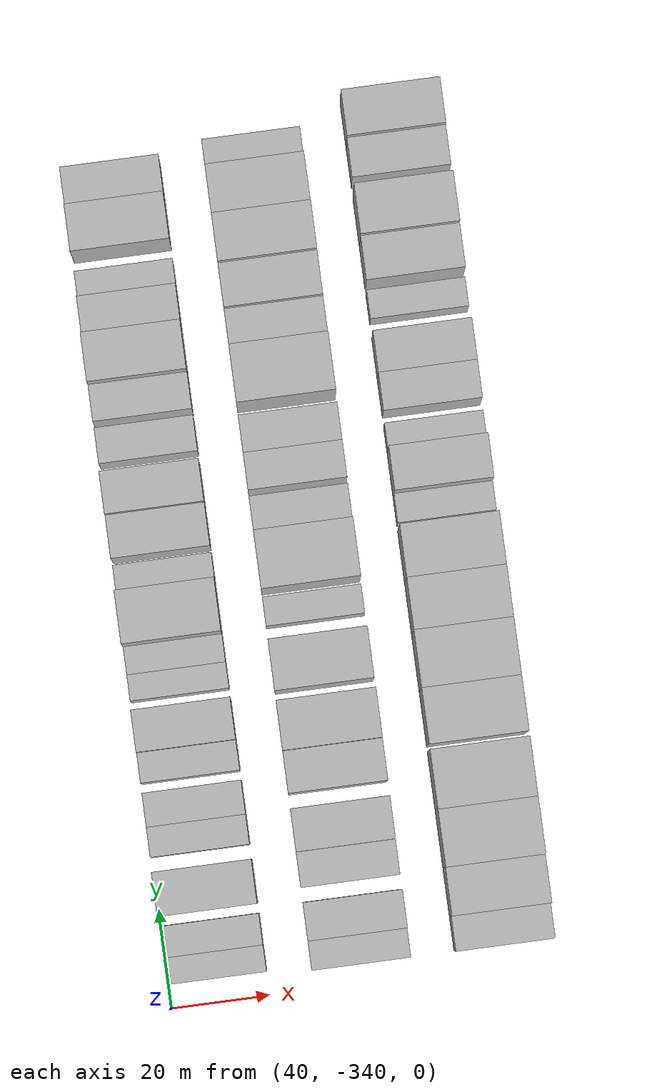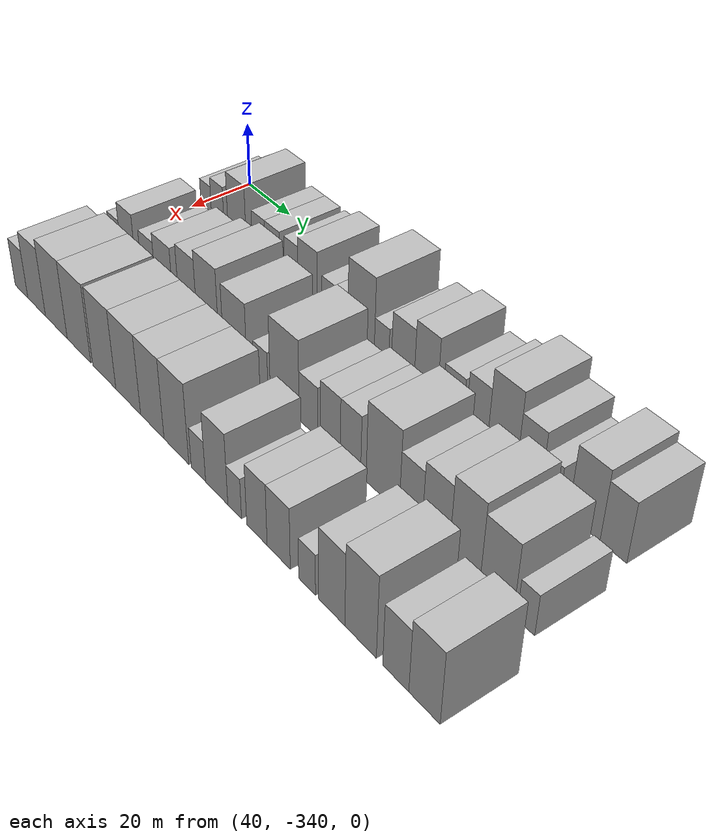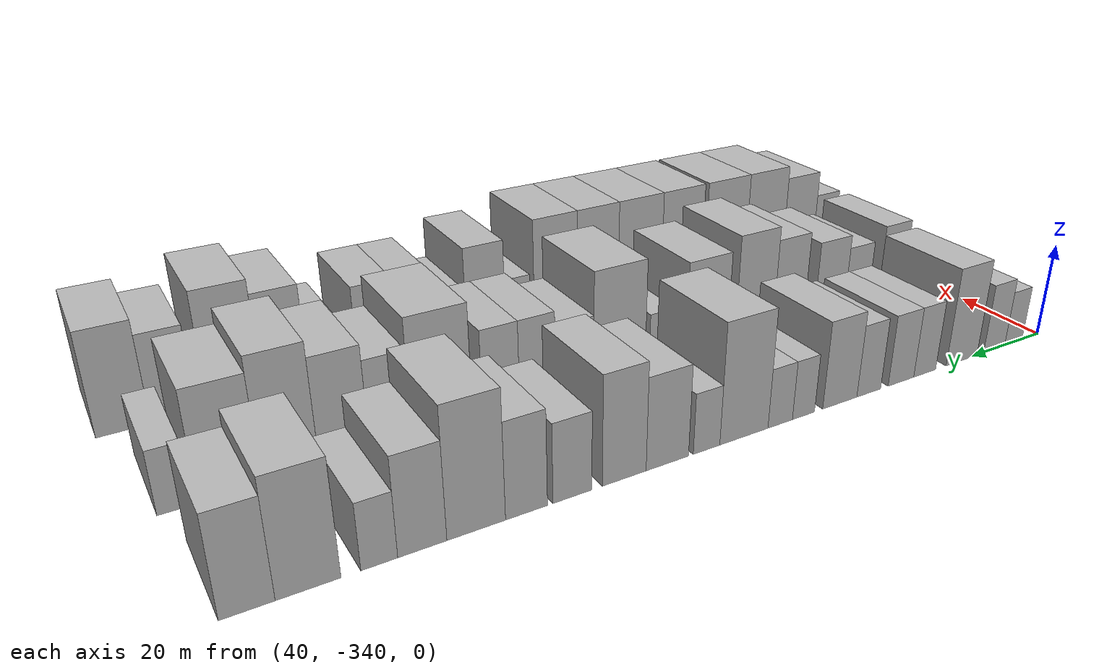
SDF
<sdf version="1.6">
 <world name="default">
  <model name="building_1">
   <static>1</static>
   <pose>50.0000 -332.3124 0 0.000000 0.000000 0.000000</pose>
   <link name="link">
    <pose>0 0 6.00 0 0 0</pose>
    <collision name="collision"><geometry><box><size>20.0000 5.3752 12.0000</size></box></geometry></collision>
    <visual name="visual">
     <cast_shadows>0</cast_shadows>
     <geometry><box><size>20.0000 5.3752 12.0000</size></box></geometry>
     <material>
      <script>
       <uri>model://HANNAS_wall/materials/scripts</uri>
       <uri>model://HANNAS_wall/materials/textures</uri>
       <name>vrc/HANNAS_wall</name>
      </script>
     </material>
    </visual>
   </link>
  </model>
  <model name="building_2">
   <static>1</static>
   <pose>50.0000 -326.4611 0 0.000000 0.000000 0.000000</pose>
   <link name="link">
    <pose>0 0 7.50 0 0 0</pose>
    <collision name="collision"><geometry><box><size>20.0000 6.3274 15.0000</size></box></geometry></collision>
    <visual name="visual">
     <cast_shadows>0</cast_shadows>
     <geometry><box><size>20.0000 6.3274 15.0000</size></box></geometry>
     <material>
      <script>
       <uri>model://HANNAS_wall/materials/scripts</uri>
       <uri>model://HANNAS_wall/materials/textures</uri>
       <name>vrc/HANNAS_wall</name>
      </script>
     </material>
    </visual>
   </link>
  </model>
  <model name="building_3">
   <static>1</static>
   <pose>50.0000 -316.8551 0 0.000000 0.000000 0.000000</pose>
   <link name="link">
    <pose>0 0 10.50 0 0 0</pose>
    <collision name="collision"><geometry><box><size>20.0000 8.8847 21.0000</size></box></geometry></collision>
    <visual name="visual">
     <cast_shadows>0</cast_shadows>
     <geometry><box><size>20.0000 8.8847 21.0000</size></box></geometry>
     <material>
      <script>
       <uri>model://HANNAS_wall/materials/scripts</uri>
       <uri>model://HANNAS_wall/materials/textures</uri>
       <name>vrc/HANNAS_wall</name>
      </script>
     </material>
    </visual>
   </link>
  </model>
  <model name="building_4">
   <static>1</static>
   <pose>50.0000 -306.3865 0 0.000000 0.000000 0.000000</pose>
   <link name="link">
    <pose>0 0 7.50 0 0 0</pose>
    <collision name="collision"><geometry><box><size>20.0000 6.0524 15.0000</size></box></geometry></collision>
    <visual name="visual">
     <cast_shadows>0</cast_shadows>
     <geometry><box><size>20.0000 6.0524 15.0000</size></box></geometry>
     <material>
      <script>
       <uri>model://HANNAS_wall/materials/scripts</uri>
       <uri>model://HANNAS_wall/materials/textures</uri>
       <name>vrc/HANNAS_wall</name>
      </script>
     </material>
    </visual>
   </link>
  </model>
  <model name="building_5">
   <static>1</static>
   <pose>50.0000 -299.9260 0 0.000000 0.000000 0.000000</pose>
   <link name="link">
    <pose>0 0 7.50 0 0 0</pose>
    <collision name="collision"><geometry><box><size>20.0000 6.8686 15.0000</size></box></geometry></collision>
    <visual name="visual">
     <cast_shadows>0</cast_shadows>
     <geometry><box><size>20.0000 6.8686 15.0000</size></box></geometry>
     <material>
      <script>
       <uri>model://HANNAS_wall/materials/scripts</uri>
       <uri>model://HANNAS_wall/materials/textures</uri>
       <name>vrc/HANNAS_wall</name>
      </script>
     </material>
    </visual>
   </link>
  </model>
  <model name="building_6">
   <static>1</static>
   <pose>50.0000 -291.4294 0 0.000000 0.000000 0.000000</pose>
   <link name="link">
    <pose>0 0 7.50 0 0 0</pose>
    <collision name="collision"><geometry><box><size>20.0000 6.1247 15.0000</size></box></geometry></collision>
    <visual name="visual">
     <cast_shadows>0</cast_shadows>
     <geometry><box><size>20.0000 6.1247 15.0000</size></box></geometry>
     <material>
      <script>
       <uri>model://HANNAS_wall/materials/scripts</uri>
       <uri>model://HANNAS_wall/materials/textures</uri>
       <name>vrc/HANNAS_wall</name>
      </script>
     </material>
    </visual>
   </link>
  </model>
  <model name="building_7">
   <static>1</static>
   <pose>50.0000 -284.0968 0 0.000000 0.000000 0.000000</pose>
   <link name="link">
    <pose>0 0 9.00 0 0 0</pose>
    <collision name="collision"><geometry><box><size>20.0000 8.5404 18.0000</size></box></geometry></collision>
    <visual name="visual">
     <cast_shadows>0</cast_shadows>
     <geometry><box><size>20.0000 8.5404 18.0000</size></box></geometry>
     <material>
      <script>
       <uri>model://HANNAS_wall/materials/scripts</uri>
       <uri>model://HANNAS_wall/materials/textures</uri>
       <name>vrc/HANNAS_wall</name>
      </script>
     </material>
    </visual>
   </link>
  </model>
  <model name="building_8">
   <static>1</static>
   <pose>50.0000 -275.1742 0 0.000000 0.000000 0.000000</pose>
   <link name="link">
    <pose>0 0 6.00 0 0 0</pose>
    <collision name="collision"><geometry><box><size>20.0000 5.3046 12.0000</size></box></geometry></collision>
    <visual name="visual">
     <cast_shadows>0</cast_shadows>
     <geometry><box><size>20.0000 5.3046 12.0000</size></box></geometry>
     <material>
      <script>
       <uri>model://HANNAS_wall/materials/scripts</uri>
       <uri>model://HANNAS_wall/materials/textures</uri>
       <name>vrc/HANNAS_wall</name>
      </script>
     </material>
    </visual>
   </link>
  </model>
  <model name="building_9">
   <static>1</static>
   <pose>50.0000 -269.6709 0 0.000000 0.000000 0.000000</pose>
   <link name="link">
    <pose>0 0 6.00 0 0 0</pose>
    <collision name="collision"><geometry><box><size>20.0000 5.7021 12.0000</size></box></geometry></collision>
    <visual name="visual">
     <cast_shadows>0</cast_shadows>
     <geometry><box><size>20.0000 5.7021 12.0000</size></box></geometry>
     <material>
      <script>
       <uri>model://HANNAS_wall/materials/scripts</uri>
       <uri>model://HANNAS_wall/materials/textures</uri>
       <name>vrc/HANNAS_wall</name>
      </script>
     </material>
    </visual>
   </link>
  </model>
  <model name="building_10">
   <static>1</static>
   <pose>50.0000 -261.4165 0 0.000000 0.000000 0.000000</pose>
   <link name="link">
    <pose>0 0 12.00 0 0 0</pose>
    <collision name="collision"><geometry><box><size>20.0000 10.8067 24.0000</size></box></geometry></collision>
    <visual name="visual">
     <cast_shadows>0</cast_shadows>
     <geometry><box><size>20.0000 10.8067 24.0000</size></box></geometry>
     <material>
      <script>
       <uri>model://HANNAS_wall/materials/scripts</uri>
       <uri>model://HANNAS_wall/materials/textures</uri>
       <name>vrc/HANNAS_wall</name>
      </script>
     </material>
    </visual>
   </link>
  </model>
  <model name="building_11">
   <static>1</static>
   <pose>50.0000 -253.1574 0 0.000000 0.000000 0.000000</pose>
   <link name="link">
    <pose>0 0 6.00 0 0 0</pose>
    <collision name="collision"><geometry><box><size>20.0000 5.7115 12.0000</size></box></geometry></collision>
    <visual name="visual">
     <cast_shadows>0</cast_shadows>
     <geometry><box><size>20.0000 5.7115 12.0000</size></box></geometry>
     <material>
      <script>
       <uri>model://HANNAS_wall/materials/scripts</uri>
       <uri>model://HANNAS_wall/materials/textures</uri>
       <name>vrc/HANNAS_wall</name>
      </script>
     </material>
    </visual>
   </link>
  </model>
  <model name="building_12">
   <static>1</static>
   <pose>50.0000 -244.9199 0 0.000000 0.000000 0.000000</pose>
   <link name="link">
    <pose>0 0 9.00 0 0 0</pose>
    <collision name="collision"><geometry><box><size>20.0000 8.7636 18.0000</size></box></geometry></collision>
    <visual name="visual">
     <cast_shadows>0</cast_shadows>
     <geometry><box><size>20.0000 8.7636 18.0000</size></box></geometry>
     <material>
      <script>
       <uri>model://HANNAS_wall/materials/scripts</uri>
       <uri>model://HANNAS_wall/materials/textures</uri>
       <name>vrc/HANNAS_wall</name>
      </script>
     </material>
    </visual>
   </link>
  </model>
  <model name="building_13">
   <static>1</static>
   <pose>50.0000 -236.2172 0 0.000000 0.000000 0.000000</pose>
   <link name="link">
    <pose>0 0 10.50 0 0 0</pose>
    <collision name="collision"><geometry><box><size>20.0000 8.6419 21.0000</size></box></geometry></collision>
    <visual name="visual">
     <cast_shadows>0</cast_shadows>
     <geometry><box><size>20.0000 8.6419 21.0000</size></box></geometry>
     <material>
      <script>
       <uri>model://HANNAS_wall/materials/scripts</uri>
       <uri>model://HANNAS_wall/materials/textures</uri>
       <name>vrc/HANNAS_wall</name>
      </script>
     </material>
    </visual>
   </link>
  </model>
  <model name="building_14">
   <static>1</static>
   <pose>50.0000 -226.2492 0 0.000000 0.000000 0.000000</pose>
   <link name="link">
    <pose>0 0 7.50 0 0 0</pose>
    <collision name="collision"><geometry><box><size>20.0000 7.2940 15.0000</size></box></geometry></collision>
    <visual name="visual">
     <cast_shadows>0</cast_shadows>
     <geometry><box><size>20.0000 7.2940 15.0000</size></box></geometry>
     <material>
      <script>
       <uri>model://HANNAS_wall/materials/scripts</uri>
       <uri>model://HANNAS_wall/materials/textures</uri>
       <name>vrc/HANNAS_wall</name>
      </script>
     </material>
    </visual>
   </link>
  </model>
  <model name="building_15">
   <static>1</static>
   <pose>50.0000 -217.8523 0 0.000000 0.000000 0.000000</pose>
   <link name="link">
    <pose>0 0 9.00 0 0 0</pose>
    <collision name="collision"><geometry><box><size>20.0000 7.4997 18.0000</size></box></geometry></collision>
    <visual name="visual">
     <cast_shadows>0</cast_shadows>
     <geometry><box><size>20.0000 7.4997 18.0000</size></box></geometry>
     <material>
      <script>
       <uri>model://HANNAS_wall/materials/scripts</uri>
       <uri>model://HANNAS_wall/materials/textures</uri>
       <name>vrc/HANNAS_wall</name>
      </script>
     </material>
    </visual>
   </link>
  </model>
  <model name="building_16">
   <static>1</static>
   <pose>50.0000 -209.1032 0 0.000000 0.000000 0.000000</pose>
   <link name="link">
    <pose>0 0 12.00 0 0 0</pose>
    <collision name="collision"><geometry><box><size>20.0000 9.9984 24.0000</size></box></geometry></collision>
    <visual name="visual">
     <cast_shadows>0</cast_shadows>
     <geometry><box><size>20.0000 9.9984 24.0000</size></box></geometry>
     <material>
      <script>
       <uri>model://HANNAS_wall/materials/scripts</uri>
       <uri>model://HANNAS_wall/materials/textures</uri>
       <name>vrc/HANNAS_wall</name>
      </script>
     </material>
    </visual>
   </link>
  </model>
  <model name="building_17">
   <static>1</static>
   <pose>50.0000 -200.1259 0 0.000000 0.000000 0.000000</pose>
   <link name="link">
    <pose>0 0 9.00 0 0 0</pose>
    <collision name="collision"><geometry><box><size>20.0000 7.9562 18.0000</size></box></geometry></collision>
    <visual name="visual">
     <cast_shadows>0</cast_shadows>
     <geometry><box><size>20.0000 7.9562 18.0000</size></box></geometry>
     <material>
      <script>
       <uri>model://HANNAS_wall/materials/scripts</uri>
       <uri>model://HANNAS_wall/materials/textures</uri>
       <name>vrc/HANNAS_wall</name>
      </script>
     </material>
    </visual>
   </link>
  </model>
  <model name="building_18">
   <static>1</static>
   <pose>50.0000 -193.2746 0 0.000000 0.000000 0.000000</pose>
   <link name="link">
    <pose>0 0 6.00 0 0 0</pose>
    <collision name="collision"><geometry><box><size>20.0000 5.7465 12.0000</size></box></geometry></collision>
    <visual name="visual">
     <cast_shadows>0</cast_shadows>
     <geometry><box><size>20.0000 5.7465 12.0000</size></box></geometry>
     <material>
      <script>
       <uri>model://HANNAS_wall/materials/scripts</uri>
       <uri>model://HANNAS_wall/materials/textures</uri>
       <name>vrc/HANNAS_wall</name>
      </script>
     </material>
    </visual>
   </link>
  </model>
  <model name="building_19">
   <static>1</static>
   <pose>50.0000 -182.5983 0 0.000000 0.000000 0.000000</pose>
   <link name="link">
    <pose>0 0 10.50 0 0 0</pose>
    <collision name="collision"><geometry><box><size>20.0000 9.6061 21.0000</size></box></geometry></collision>
    <visual name="visual">
     <cast_shadows>0</cast_shadows>
     <geometry><box><size>20.0000 9.6061 21.0000</size></box></geometry>
     <material>
      <script>
       <uri>model://HANNAS_wall/materials/scripts</uri>
       <uri>model://HANNAS_wall/materials/textures</uri>
       <name>vrc/HANNAS_wall</name>
      </script>
     </material>
    </visual>
   </link>
  </model>
  <model name="building_20">
   <static>1</static>
   <pose>50.0000 -173.8502 0 0.000000 0.000000 0.000000</pose>
   <link name="link">
    <pose>0 0 9.00 0 0 0</pose>
    <collision name="collision"><geometry><box><size>20.0000 7.8902 18.0000</size></box></geometry></collision>
    <visual name="visual">
     <cast_shadows>0</cast_shadows>
     <geometry><box><size>20.0000 7.8902 18.0000</size></box></geometry>
     <material>
      <script>
       <uri>model://HANNAS_wall/materials/scripts</uri>
       <uri>model://HANNAS_wall/materials/textures</uri>
       <name>vrc/HANNAS_wall</name>
      </script>
     </material>
    </visual>
   </link>
  </model>
  <model name="building_75">
   <static>1</static>
   <pose>79.0000 -333.0246 0 0.000000 0.000000 0.000000</pose>
   <link name="link">
    <pose>0 0 6.00 0 0 0</pose>
    <collision name="collision"><geometry><box><size>20.0000 5.9508 12.0000</size></box></geometry></collision>
    <visual name="visual">
     <cast_shadows>0</cast_shadows>
     <geometry><box><size>20.0000 5.9508 12.0000</size></box></geometry>
     <material>
      <script>
       <uri>model://HANNAS_wall/materials/scripts</uri>
       <uri>model://HANNAS_wall/materials/textures</uri>
       <name>vrc/HANNAS_wall</name>
      </script>
     </material>
    </visual>
   </link>
  </model>
  <model name="building_76">
   <static>1</static>
   <pose>79.0000 -326.1938 0 0.000000 0.000000 0.000000</pose>
   <link name="link">
    <pose>0 0 9.00 0 0 0</pose>
    <collision name="collision"><geometry><box><size>20.0000 7.7109 18.0000</size></box></geometry></collision>
    <visual name="visual">
     <cast_shadows>0</cast_shadows>
     <geometry><box><size>20.0000 7.7109 18.0000</size></box></geometry>
     <material>
      <script>
       <uri>model://HANNAS_wall/materials/scripts</uri>
       <uri>model://HANNAS_wall/materials/textures</uri>
       <name>vrc/HANNAS_wall</name>
      </script>
     </material>
    </visual>
   </link>
  </model>
  <model name="building_77">
   <static>1</static>
   <pose>79.0000 -315.7616 0 0.000000 0.000000 0.000000</pose>
   <link name="link">
    <pose>0 0 7.50 0 0 0</pose>
    <collision name="collision"><geometry><box><size>20.0000 7.1535 15.0000</size></box></geometry></collision>
    <visual name="visual">
     <cast_shadows>0</cast_shadows>
     <geometry><box><size>20.0000 7.1535 15.0000</size></box></geometry>
     <material>
      <script>
       <uri>model://HANNAS_wall/materials/scripts</uri>
       <uri>model://HANNAS_wall/materials/textures</uri>
       <name>vrc/HANNAS_wall</name>
      </script>
     </material>
    </visual>
   </link>
  </model>
  <model name="building_78">
   <static>1</static>
   <pose>79.0000 -307.8486 0 0.000000 0.000000 0.000000</pose>
   <link name="link">
    <pose>0 0 9.00 0 0 0</pose>
    <collision name="collision"><geometry><box><size>20.0000 8.6723 18.0000</size></box></geometry></collision>
    <visual name="visual">
     <cast_shadows>0</cast_shadows>
     <geometry><box><size>20.0000 8.6723 18.0000</size></box></geometry>
     <material>
      <script>
       <uri>model://HANNAS_wall/materials/scripts</uri>
       <uri>model://HANNAS_wall/materials/textures</uri>
       <name>vrc/HANNAS_wall</name>
      </script>
     </material>
    </visual>
   </link>
  </model>
  <model name="building_79">
   <static>1</static>
   <pose>79.0000 -296.2455 0 0.000000 0.000000 0.000000</pose>
   <link name="link">
    <pose>0 0 10.50 0 0 0</pose>
    <collision name="collision"><geometry><box><size>20.0000 8.5339 21.0000</size></box></geometry></collision>
    <visual name="visual">
     <cast_shadows>0</cast_shadows>
     <geometry><box><size>20.0000 8.5339 21.0000</size></box></geometry>
     <material>
      <script>
       <uri>model://HANNAS_wall/materials/scripts</uri>
       <uri>model://HANNAS_wall/materials/textures</uri>
       <name>vrc/HANNAS_wall</name>
      </script>
     </material>
    </visual>
   </link>
  </model>
  <model name="building_80">
   <static>1</static>
   <pose>79.0000 -286.9466 0 0.000000 0.000000 0.000000</pose>
   <link name="link">
    <pose>0 0 12.00 0 0 0</pose>
    <collision name="collision"><geometry><box><size>20.0000 10.0640 24.0000</size></box></geometry></collision>
    <visual name="visual">
     <cast_shadows>0</cast_shadows>
     <geometry><box><size>20.0000 10.0640 24.0000</size></box></geometry>
     <material>
      <script>
       <uri>model://HANNAS_wall/materials/scripts</uri>
       <uri>model://HANNAS_wall/materials/textures</uri>
       <name>vrc/HANNAS_wall</name>
      </script>
     </material>
    </visual>
   </link>
  </model>
  <model name="building_81">
   <static>1</static>
   <pose>79.0000 -274.7111 0 0.000000 0.000000 0.000000</pose>
   <link name="link">
    <pose>0 0 10.50 0 0 0</pose>
    <collision name="collision"><geometry><box><size>20.0000 10.4068 21.0000</size></box></geometry></collision>
    <visual name="visual">
     <cast_shadows>0</cast_shadows>
     <geometry><box><size>20.0000 10.4068 21.0000</size></box></geometry>
     <material>
      <script>
       <uri>model://HANNAS_wall/materials/scripts</uri>
       <uri>model://HANNAS_wall/materials/textures</uri>
       <name>vrc/HANNAS_wall</name>
      </script>
     </material>
    </visual>
   </link>
  </model>
  <model name="building_82">
   <static>1</static>
   <pose>79.0000 -263.5470 0 0.000000 0.000000 0.000000</pose>
   <link name="link">
    <pose>0 0 6.00 0 0 0</pose>
    <collision name="collision"><geometry><box><size>20.0000 5.9213 12.0000</size></box></geometry></collision>
    <visual name="visual">
     <cast_shadows>0</cast_shadows>
     <geometry><box><size>20.0000 5.9213 12.0000</size></box></geometry>
     <material>
      <script>
       <uri>model://HANNAS_wall/materials/scripts</uri>
       <uri>model://HANNAS_wall/materials/textures</uri>
       <name>vrc/HANNAS_wall</name>
      </script>
     </material>
    </visual>
   </link>
  </model>
  <model name="building_83">
   <static>1</static>
   <pose>79.0000 -253.6723 0 0.000000 0.000000 0.000000</pose>
   <link name="link">
    <pose>0 0 12.00 0 0 0</pose>
    <collision name="collision"><geometry><box><size>20.0000 11.8282 24.0000</size></box></geometry></collision>
    <visual name="visual">
     <cast_shadows>0</cast_shadows>
     <geometry><box><size>20.0000 11.8282 24.0000</size></box></geometry>
     <material>
      <script>
       <uri>model://HANNAS_wall/materials/scripts</uri>
       <uri>model://HANNAS_wall/materials/textures</uri>
       <name>vrc/HANNAS_wall</name>
      </script>
     </material>
    </visual>
   </link>
  </model>
  <model name="building_84">
   <static>1</static>
   <pose>79.0000 -244.0399 0 0.000000 0.000000 0.000000</pose>
   <link name="link">
    <pose>0 0 7.50 0 0 0</pose>
    <collision name="collision"><geometry><box><size>20.0000 7.4366 15.0000</size></box></geometry></collision>
    <visual name="visual">
     <cast_shadows>0</cast_shadows>
     <geometry><box><size>20.0000 7.4366 15.0000</size></box></geometry>
     <material>
      <script>
       <uri>model://HANNAS_wall/materials/scripts</uri>
       <uri>model://HANNAS_wall/materials/textures</uri>
       <name>vrc/HANNAS_wall</name>
      </script>
     </material>
    </visual>
   </link>
  </model>
  <model name="building_85">
   <static>1</static>
   <pose>79.0000 -235.5253 0 0.000000 0.000000 0.000000</pose>
   <link name="link">
    <pose>0 0 9.00 0 0 0</pose>
    <collision name="collision"><geometry><box><size>20.0000 7.5925 18.0000</size></box></geometry></collision>
    <visual name="visual">
     <cast_shadows>0</cast_shadows>
     <geometry><box><size>20.0000 7.5925 18.0000</size></box></geometry>
     <material>
      <script>
       <uri>model://HANNAS_wall/materials/scripts</uri>
       <uri>model://HANNAS_wall/materials/textures</uri>
       <name>vrc/HANNAS_wall</name>
      </script>
     </material>
    </visual>
   </link>
  </model>
  <model name="building_86">
   <static>1</static>
   <pose>79.0000 -227.9254 0 0.000000 0.000000 0.000000</pose>
   <link name="link">
    <pose>0 0 9.00 0 0 0</pose>
    <collision name="collision"><geometry><box><size>20.0000 7.6072 18.0000</size></box></geometry></collision>
    <visual name="visual">
     <cast_shadows>0</cast_shadows>
     <geometry><box><size>20.0000 7.6072 18.0000</size></box></geometry>
     <material>
      <script>
       <uri>model://HANNAS_wall/materials/scripts</uri>
       <uri>model://HANNAS_wall/materials/textures</uri>
       <name>vrc/HANNAS_wall</name>
      </script>
     </material>
    </visual>
   </link>
  </model>
  <model name="building_87">
   <static>1</static>
   <pose>79.0000 -216.2284 0 0.000000 0.000000 0.000000</pose>
   <link name="link">
    <pose>0 0 12.00 0 0 0</pose>
    <collision name="collision"><geometry><box><size>20.0000 11.7868 24.0000</size></box></geometry></collision>
    <visual name="visual">
     <cast_shadows>0</cast_shadows>
     <geometry><box><size>20.0000 11.7868 24.0000</size></box></geometry>
     <material>
      <script>
       <uri>model://HANNAS_wall/materials/scripts</uri>
       <uri>model://HANNAS_wall/materials/textures</uri>
       <name>vrc/HANNAS_wall</name>
      </script>
     </material>
    </visual>
   </link>
  </model>
  <model name="building_88">
   <static>1</static>
   <pose>79.0000 -206.4520 0 0.000000 0.000000 0.000000</pose>
   <link name="link">
    <pose>0 0 9.00 0 0 0</pose>
    <collision name="collision"><geometry><box><size>20.0000 7.7661 18.0000</size></box></geometry></collision>
    <visual name="visual">
     <cast_shadows>0</cast_shadows>
     <geometry><box><size>20.0000 7.7661 18.0000</size></box></geometry>
     <material>
      <script>
       <uri>model://HANNAS_wall/materials/scripts</uri>
       <uri>model://HANNAS_wall/materials/textures</uri>
       <name>vrc/HANNAS_wall</name>
      </script>
     </material>
    </visual>
   </link>
  </model>
  <model name="building_89">
   <static>1</static>
   <pose>79.0000 -198.0844 0 0.000000 0.000000 0.000000</pose>
   <link name="link">
    <pose>0 0 10.50 0 0 0</pose>
    <collision name="collision"><geometry><box><size>20.0000 8.9691 21.0000</size></box></geometry></collision>
    <visual name="visual">
     <cast_shadows>0</cast_shadows>
     <geometry><box><size>20.0000 8.9691 21.0000</size></box></geometry>
     <material>
      <script>
       <uri>model://HANNAS_wall/materials/scripts</uri>
       <uri>model://HANNAS_wall/materials/textures</uri>
       <name>vrc/HANNAS_wall</name>
      </script>
     </material>
    </visual>
   </link>
  </model>
  <model name="building_90">
   <static>1</static>
   <pose>79.0000 -188.7000 0 0.000000 0.000000 0.000000</pose>
   <link name="link">
    <pose>0 0 12.00 0 0 0</pose>
    <collision name="collision"><geometry><box><size>20.0000 9.7997 24.0000</size></box></geometry></collision>
    <visual name="visual">
     <cast_shadows>0</cast_shadows>
     <geometry><box><size>20.0000 9.7997 24.0000</size></box></geometry>
     <material>
      <script>
       <uri>model://HANNAS_wall/materials/scripts</uri>
       <uri>model://HANNAS_wall/materials/textures</uri>
       <name>vrc/HANNAS_wall</name>
      </script>
     </material>
    </visual>
   </link>
  </model>
  <model name="building_91">
   <static>1</static>
   <pose>79.0000 -178.6765 0 0.000000 0.000000 0.000000</pose>
   <link name="link">
    <pose>0 0 10.50 0 0 0</pose>
    <collision name="collision"><geometry><box><size>20.0000 10.2473 21.0000</size></box></geometry></collision>
    <visual name="visual">
     <cast_shadows>0</cast_shadows>
     <geometry><box><size>20.0000 10.2473 21.0000</size></box></geometry>
     <material>
      <script>
       <uri>model://HANNAS_wall/materials/scripts</uri>
       <uri>model://HANNAS_wall/materials/textures</uri>
       <name>vrc/HANNAS_wall</name>
      </script>
     </material>
    </visual>
   </link>
  </model>
  <model name="building_92">
   <static>1</static>
   <pose>79.0000 -169.8927 0 0.000000 0.000000 0.000000</pose>
   <link name="link">
    <pose>0 0 6.00 0 0 0</pose>
    <collision name="collision"><geometry><box><size>20.0000 5.3204 12.0000</size></box></geometry></collision>
    <visual name="visual">
     <cast_shadows>0</cast_shadows>
     <geometry><box><size>20.0000 5.3204 12.0000</size></box></geometry>
     <material>
      <script>
       <uri>model://HANNAS_wall/materials/scripts</uri>
       <uri>model://HANNAS_wall/materials/textures</uri>
       <name>vrc/HANNAS_wall</name>
      </script>
     </material>
    </visual>
   </link>
  </model>
  <model name="building_148">
   <static>1</static>
   <pose>108.0000 -332.4351 0 0.000000 0.000000 0.000000</pose>
   <link name="link">
    <pose>0 0 7.50 0 0 0</pose>
    <collision name="collision"><geometry><box><size>20.0000 7.1298 15.0000</size></box></geometry></collision>
    <visual name="visual">
     <cast_shadows>0</cast_shadows>
     <geometry><box><size>20.0000 7.1298 15.0000</size></box></geometry>
     <material>
      <script>
       <uri>model://HANNAS_wall/materials/scripts</uri>
       <uri>model://HANNAS_wall/materials/textures</uri>
       <name>vrc/HANNAS_wall</name>
      </script>
     </material>
    </visual>
   </link>
  </model>
  <model name="building_149">
   <static>1</static>
   <pose>108.0000 -324.0013 0 0.000000 0.000000 0.000000</pose>
   <link name="link">
    <pose>0 0 10.50 0 0 0</pose>
    <collision name="collision"><geometry><box><size>20.0000 9.7379 21.0000</size></box></geometry></collision>
    <visual name="visual">
     <cast_shadows>0</cast_shadows>
     <geometry><box><size>20.0000 9.7379 21.0000</size></box></geometry>
     <material>
      <script>
       <uri>model://HANNAS_wall/materials/scripts</uri>
       <uri>model://HANNAS_wall/materials/textures</uri>
       <name>vrc/HANNAS_wall</name>
      </script>
     </material>
    </visual>
   </link>
  </model>
  <model name="building_150">
   <static>1</static>
   <pose>108.0000 -313.3439 0 0.000000 0.000000 0.000000</pose>
   <link name="link">
    <pose>0 0 12.00 0 0 0</pose>
    <collision name="collision"><geometry><box><size>20.0000 11.5768 24.0000</size></box></geometry></collision>
    <visual name="visual">
     <cast_shadows>0</cast_shadows>
     <geometry><box><size>20.0000 11.5768 24.0000</size></box></geometry>
     <material>
      <script>
       <uri>model://HANNAS_wall/materials/scripts</uri>
       <uri>model://HANNAS_wall/materials/textures</uri>
       <name>vrc/HANNAS_wall</name>
      </script>
     </material>
    </visual>
   </link>
  </model>
  <model name="building_151">
   <static>1</static>
   <pose>108.0000 -301.5636 0 0.000000 0.000000 0.000000</pose>
   <link name="link">
    <pose>0 0 12.00 0 0 0</pose>
    <collision name="collision"><geometry><box><size>20.0000 11.9838 24.0000</size></box></geometry></collision>
    <visual name="visual">
     <cast_shadows>0</cast_shadows>
     <geometry><box><size>20.0000 11.9838 24.0000</size></box></geometry>
     <material>
      <script>
       <uri>model://HANNAS_wall/materials/scripts</uri>
       <uri>model://HANNAS_wall/materials/textures</uri>
       <name>vrc/HANNAS_wall</name>
      </script>
     </material>
    </visual>
   </link>
  </model>
  <model name="building_152">
   <static>1</static>
   <pose>108.0000 -288.9253 0 0.000000 0.000000 0.000000</pose>
   <link name="link">
    <pose>0 0 12.00 0 0 0</pose>
    <collision name="collision"><geometry><box><size>20.0000 11.2927 24.0000</size></box></geometry></collision>
    <visual name="visual">
     <cast_shadows>0</cast_shadows>
     <geometry><box><size>20.0000 11.2927 24.0000</size></box></geometry>
     <material>
      <script>
       <uri>model://HANNAS_wall/materials/scripts</uri>
       <uri>model://HANNAS_wall/materials/textures</uri>
       <name>vrc/HANNAS_wall</name>
      </script>
     </material>
    </visual>
   </link>
  </model>
  <model name="building_153">
   <static>1</static>
   <pose>108.0000 -277.4660 0 0.000000 0.000000 0.000000</pose>
   <link name="link">
    <pose>0 0 12.00 0 0 0</pose>
    <collision name="collision"><geometry><box><size>20.0000 11.6260 24.0000</size></box></geometry></collision>
    <visual name="visual">
     <cast_shadows>0</cast_shadows>
     <geometry><box><size>20.0000 11.6260 24.0000</size></box></geometry>
     <material>
      <script>
       <uri>model://HANNAS_wall/materials/scripts</uri>
       <uri>model://HANNAS_wall/materials/textures</uri>
       <name>vrc/HANNAS_wall</name>
      </script>
     </material>
    </visual>
   </link>
  </model>
  <model name="building_154">
   <static>1</static>
   <pose>108.0000 -266.3952 0 0.000000 0.000000 0.000000</pose>
   <link name="link">
    <pose>0 0 12.00 0 0 0</pose>
    <collision name="collision"><geometry><box><size>20.0000 10.5155 24.0000</size></box></geometry></collision>
    <visual name="visual">
     <cast_shadows>0</cast_shadows>
     <geometry><box><size>20.0000 10.5155 24.0000</size></box></geometry>
     <material>
      <script>
       <uri>model://HANNAS_wall/materials/scripts</uri>
       <uri>model://HANNAS_wall/materials/textures</uri>
       <name>vrc/HANNAS_wall</name>
      </script>
     </material>
    </visual>
   </link>
  </model>
  <model name="building_155">
   <static>1</static>
   <pose>108.0000 -255.7702 0 0.000000 0.000000 0.000000</pose>
   <link name="link">
    <pose>0 0 12.00 0 0 0</pose>
    <collision name="collision"><geometry><box><size>20.0000 10.7346 24.0000</size></box></geometry></collision>
    <visual name="visual">
     <cast_shadows>0</cast_shadows>
     <geometry><box><size>20.0000 10.7346 24.0000</size></box></geometry>
     <material>
      <script>
       <uri>model://HANNAS_wall/materials/scripts</uri>
       <uri>model://HANNAS_wall/materials/textures</uri>
       <name>vrc/HANNAS_wall</name>
      </script>
     </material>
    </visual>
   </link>
  </model>
  <model name="building_156">
   <static>1</static>
   <pose>108.0000 -246.4190 0 0.000000 0.000000 0.000000</pose>
   <link name="link">
    <pose>0 0 6.00 0 0 0</pose>
    <collision name="collision"><geometry><box><size>20.0000 5.9678 12.0000</size></box></geometry></collision>
    <visual name="visual">
     <cast_shadows>0</cast_shadows>
     <geometry><box><size>20.0000 5.9678 12.0000</size></box></geometry>
     <material>
      <script>
       <uri>model://HANNAS_wall/materials/scripts</uri>
       <uri>model://HANNAS_wall/materials/textures</uri>
       <name>vrc/HANNAS_wall</name>
      </script>
     </material>
    </visual>
   </link>
  </model>
  <model name="building_157">
   <static>1</static>
   <pose>108.0000 -238.9402 0 0.000000 0.000000 0.000000</pose>
   <link name="link">
    <pose>0 0 10.50 0 0 0</pose>
    <collision name="collision"><geometry><box><size>20.0000 8.9896 21.0000</size></box></geometry></collision>
    <visual name="visual">
     <cast_shadows>0</cast_shadows>
     <geometry><box><size>20.0000 8.9896 21.0000</size></box></geometry>
     <material>
      <script>
       <uri>model://HANNAS_wall/materials/scripts</uri>
       <uri>model://HANNAS_wall/materials/textures</uri>
       <name>vrc/HANNAS_wall</name>
      </script>
     </material>
    </visual>
   </link>
  </model>
  <model name="building_158">
   <static>1</static>
   <pose>108.0000 -231.7589 0 0.000000 0.000000 0.000000</pose>
   <link name="link">
    <pose>0 0 6.00 0 0 0</pose>
    <collision name="collision"><geometry><box><size>20.0000 5.3732 12.0000</size></box></geometry></collision>
    <visual name="visual">
     <cast_shadows>0</cast_shadows>
     <geometry><box><size>20.0000 5.3732 12.0000</size></box></geometry>
     <material>
      <script>
       <uri>model://HANNAS_wall/materials/scripts</uri>
       <uri>model://HANNAS_wall/materials/textures</uri>
       <name>vrc/HANNAS_wall</name>
      </script>
     </material>
    </visual>
   </link>
  </model>
  <model name="building_159">
   <static>1</static>
   <pose>108.0000 -223.2022 0 0.000000 0.000000 0.000000</pose>
   <link name="link">
    <pose>0 0 9.00 0 0 0</pose>
    <collision name="collision"><geometry><box><size>20.0000 7.7402 18.0000</size></box></geometry></collision>
    <visual name="visual">
     <cast_shadows>0</cast_shadows>
     <geometry><box><size>20.0000 7.7402 18.0000</size></box></geometry>
     <material>
      <script>
       <uri>model://HANNAS_wall/materials/scripts</uri>
       <uri>model://HANNAS_wall/materials/textures</uri>
       <name>vrc/HANNAS_wall</name>
      </script>
     </material>
    </visual>
   </link>
  </model>
  <model name="building_160">
   <static>1</static>
   <pose>108.0000 -215.0820 0 0.000000 0.000000 0.000000</pose>
   <link name="link">
    <pose>0 0 9.00 0 0 0</pose>
    <collision name="collision"><geometry><box><size>20.0000 8.5001 18.0000</size></box></geometry></collision>
    <visual name="visual">
     <cast_shadows>0</cast_shadows>
     <geometry><box><size>20.0000 8.5001 18.0000</size></box></geometry>
     <material>
      <script>
       <uri>model://HANNAS_wall/materials/scripts</uri>
       <uri>model://HANNAS_wall/materials/textures</uri>
       <name>vrc/HANNAS_wall</name>
      </script>
     </material>
    </visual>
   </link>
  </model>
  <model name="building_161">
   <static>1</static>
   <pose>108.0000 -204.8733 0 0.000000 0.000000 0.000000</pose>
   <link name="link">
    <pose>0 0 6.00 0 0 0</pose>
    <collision name="collision"><geometry><box><size>20.0000 5.9173 12.0000</size></box></geometry></collision>
    <visual name="visual">
     <cast_shadows>0</cast_shadows>
     <geometry><box><size>20.0000 5.9173 12.0000</size></box></geometry>
     <material>
      <script>
       <uri>model://HANNAS_wall/materials/scripts</uri>
       <uri>model://HANNAS_wall/materials/textures</uri>
       <name>vrc/HANNAS_wall</name>
      </script>
     </material>
    </visual>
   </link>
  </model>
  <model name="building_162">
   <static>1</static>
   <pose>108.0000 -196.4270 0 0.000000 0.000000 0.000000</pose>
   <link name="link">
    <pose>0 0 10.50 0 0 0</pose>
    <collision name="collision"><geometry><box><size>20.0000 8.9754 21.0000</size></box></geometry></collision>
    <visual name="visual">
     <cast_shadows>0</cast_shadows>
     <geometry><box><size>20.0000 8.9754 21.0000</size></box></geometry>
     <material>
      <script>
       <uri>model://HANNAS_wall/materials/scripts</uri>
       <uri>model://HANNAS_wall/materials/textures</uri>
       <name>vrc/HANNAS_wall</name>
      </script>
     </material>
    </visual>
   </link>
  </model>
  <model name="building_163">
   <static>1</static>
   <pose>108.0000 -186.8128 0 0.000000 0.000000 0.000000</pose>
   <link name="link">
    <pose>0 0 12.00 0 0 0</pose>
    <collision name="collision"><geometry><box><size>20.0000 10.2529 24.0000</size></box></geometry></collision>
    <visual name="visual">
     <cast_shadows>0</cast_shadows>
     <geometry><box><size>20.0000 10.2529 24.0000</size></box></geometry>
     <material>
      <script>
       <uri>model://HANNAS_wall/materials/scripts</uri>
       <uri>model://HANNAS_wall/materials/textures</uri>
       <name>vrc/HANNAS_wall</name>
      </script>
     </material>
    </visual>
   </link>
  </model>
  <model name="building_164">
   <static>1</static>
   <pose>108.0000 -175.6466 0 0.000000 0.000000 0.000000</pose>
   <link name="link">
    <pose>0 0 9.00 0 0 0</pose>
    <collision name="collision"><geometry><box><size>20.0000 8.0796 18.0000</size></box></geometry></collision>
    <visual name="visual">
     <cast_shadows>0</cast_shadows>
     <geometry><box><size>20.0000 8.0796 18.0000</size></box></geometry>
     <material>
      <script>
       <uri>model://HANNAS_wall/materials/scripts</uri>
       <uri>model://HANNAS_wall/materials/textures</uri>
       <name>vrc/HANNAS_wall</name>
      </script>
     </material>
    </visual>
   </link>
  </model>
  <model name="building_165">
   <static>1</static>
   <pose>108.0000 -166.9323 0 0.000000 0.000000 0.000000</pose>
   <link name="link">
    <pose>0 0 10.50 0 0 0</pose>
    <collision name="collision"><geometry><box><size>20.0000 9.3489 21.0000</size></box></geometry></collision>
    <visual name="visual">
     <cast_shadows>0</cast_shadows>
     <geometry><box><size>20.0000 9.3489 21.0000</size></box></geometry>
     <material>
      <script>
       <uri>model://HANNAS_wall/materials/scripts</uri>
       <uri>model://HANNAS_wall/materials/textures</uri>
       <name>vrc/HANNAS_wall</name>
      </script>
     </material>
    </visual>
   </link>
  </model>
 </world>
</sdf>
